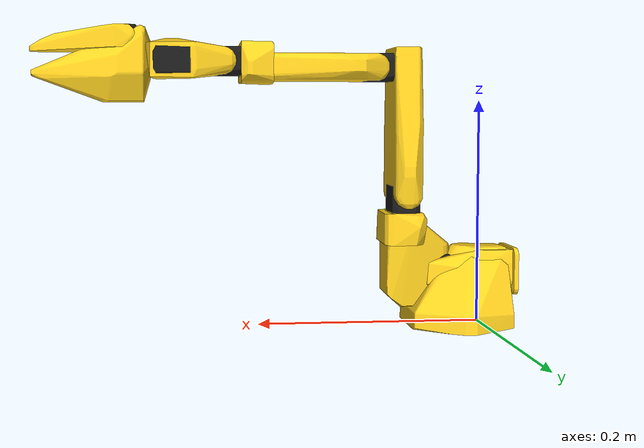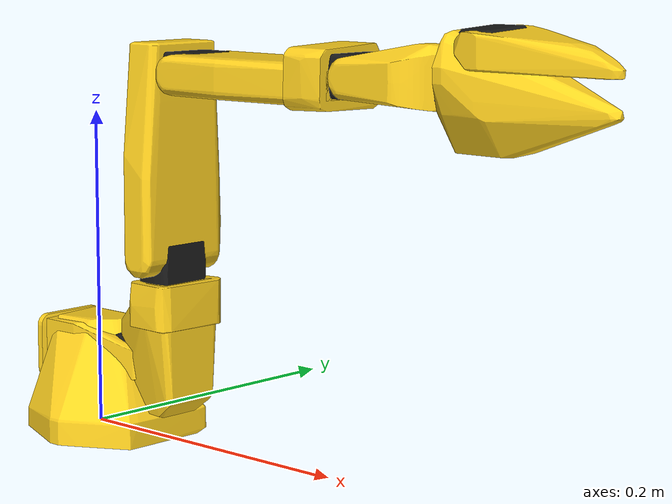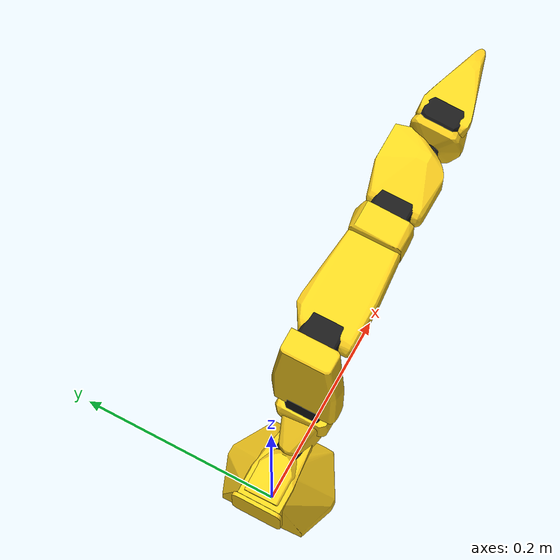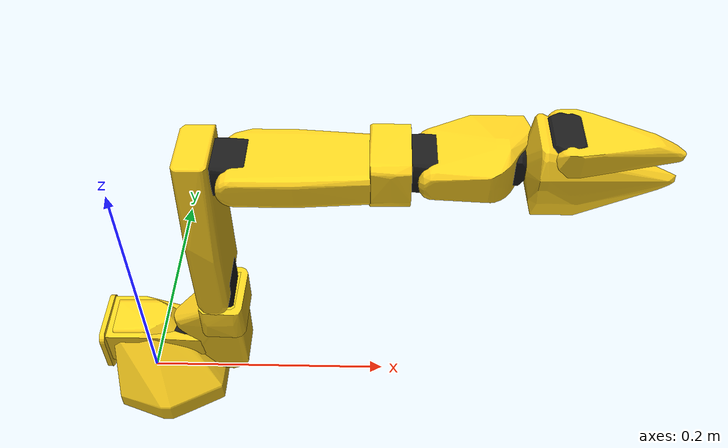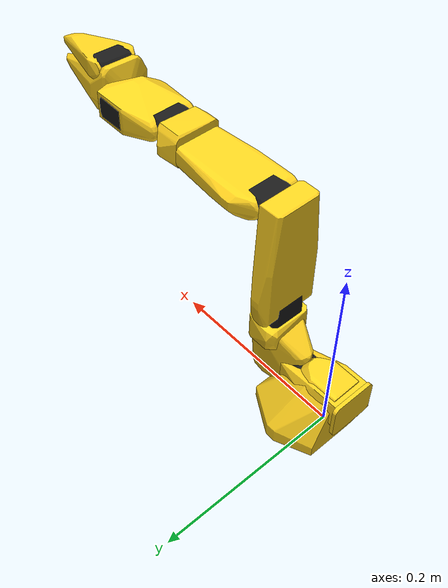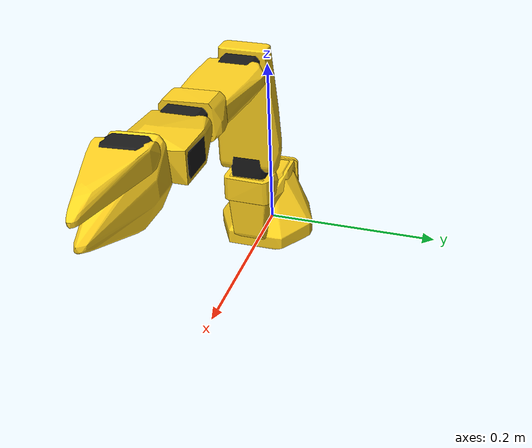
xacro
<?xml version="1.0"?>
<robot name="so101" xmlns:xacro="http://www.ros.org/wiki/xacro">
  <xacro:arg name="sim" default="true"/>

  <link name="world"/>
  <joint name="world_to_base" type="fixed">
    <parent link="world"/>
    <child link="base_link"/>
    <origin xyz="0 0 0" rpy="0 0 0"/>
  </joint>

  <xacro:include filename="$(find so101_cell)/urdf/so101_arm.xacro"/>

  <xacro:if value="$(arg sim)">
    <ros2_control name="so101_gz" type="system">
      <hardware>
        <plugin>gz_ros2_control/GazeboSimSystem</plugin>
      </hardware>
      <xacro:macro name="sim_joint" params="name initial">
        <joint name="${name}">
          <command_interface name="position"/>
          <state_interface name="position"><param name="initial_value">${initial}</param></state_interface>
          <state_interface name="velocity"/>
        </joint>
      </xacro:macro>
      <!-- Starts in the home pose (keep in sync with motion.home_joints in llm_commander/config/scene.yaml). -->
      <xacro:sim_joint name="shoulder_pan" initial="0.0"/>
      <xacro:sim_joint name="shoulder_lift" initial="-1.4"/>
      <xacro:sim_joint name="elbow_flex" initial="1.4"/>
      <xacro:sim_joint name="wrist_flex" initial="0.9"/>
      <xacro:sim_joint name="wrist_roll" initial="0.0"/>
      <xacro:sim_joint name="gripper" initial="0.0"/>
    </ros2_control>

    <gazebo>
      <plugin filename="gz_ros2_control-system" name="gz_ros2_control::GazeboSimROS2ControlPlugin">
        <parameters>$(find so101_cell)/config/controllers.yaml</parameters>
      </plugin>
    </gazebo>

    <!-- Grippy jaws so a cube doesn't slide out while it's carried. -->
    <xacro:macro name="grippy" params="link">
      <gazebo reference="${link}">
        <mu1>2.0</mu1>
        <mu2>2.0</mu2>
      </gazebo>
    </xacro:macro>
    <xacro:grippy link="gripper_link"/>
    <xacro:grippy link="moving_jaw_so101_v1_link"/>
  </xacro:if>
</robot>

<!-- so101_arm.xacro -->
<!-- SO-101 follower arm, from TheRobotStudio/SO-ARM100 Simulation/SO101/so101_new_calib.urdf (Apache-2.0).
     Changes: mesh paths point at this package, transmissions removed (see so101.urdf.xacro). -->
<robot xmlns:xacro="http://www.ros.org/wiki/xacro">

  <!-- Materials -->
  <material name="3d_printed">
    <color rgba="1.0 0.82 0.12 1.0"/>
  </material>
  <material name="sts3215">
    <color rgba="0.1 0.1 0.1 1.0"/>
  </material>

  <!-- Link base -->
  <link name="base_link">
    <inertial>
      <origin xyz="0.0137179 -5.19711e-05 0.0334843" rpy="0 0 0"/>
      <mass value="0.147"/>
      <inertia ixx="0.000114686" ixy="-4.59787e-07" ixz="4.97151e-06" iyy="0.000136117" iyz="9.75275e-08" izz="0.000130364"/>
    </inertial>
    <!-- Part base_motor_holder_so101_v1 -->
    <visual>
      <origin xyz="-0.00636471 -9.94414e-05 -0.0024" rpy="1.5708 -1.67685e-15 1.5708"/>
      <geometry>
        <mesh filename="file://$(find so101_cell)/meshes/base_motor_holder_so101_v1.stl"/>
      </geometry>
      <material name="3d_printed"/>
    </visual>
    <collision>
      <origin xyz="-0.00636471 -9.94414e-05 -0.0024" rpy="1.5708 -1.67685e-15 1.5708"/>
      <geometry>
        <mesh filename="file://$(find so101_cell)/meshes/base_motor_holder_so101_v1.stl"/>
      </geometry>
    </collision>
    <!-- Part base_so101_v2 -->
    <visual>
      <origin xyz="-0.00636471 -8.97657e-09 -0.0024" rpy="1.5708 -2.78073e-29 1.5708"/>
      <geometry>
        <mesh filename="file://$(find so101_cell)/meshes/base_so101_v2.stl"/>
      </geometry>
      <material name="3d_printed"/>
    </visual>
    <collision>
      <origin xyz="-0.00636471 -8.97657e-09 -0.0024" rpy="1.5708 -2.78073e-29 1.5708"/>
      <geometry>
        <mesh filename="file://$(find so101_cell)/meshes/base_so101_v2.stl"/>
      </geometry>
    </collision>
    <!-- Part sts3215_03a_v1 -->
    <visual>
      <origin xyz="0.0263353 -8.97657e-09 0.0437" rpy="-8.21148e-16 7.84513e-18 1.249e-15"/>
      <geometry>
        <mesh filename="file://$(find so101_cell)/meshes/sts3215_03a_v1.stl"/>
      </geometry>
      <material name="sts3215"/>
    </visual>
    <collision>
      <origin xyz="0.0263353 -8.97657e-09 0.0437" rpy="-8.21148e-16 7.84513e-18 1.249e-15"/>
      <geometry>
        <mesh filename="file://$(find so101_cell)/meshes/sts3215_03a_v1.stl"/>
      </geometry>
    </collision>
    <!-- Part waveshare_mounting_plate_so101_v2 -->
    <visual>
      <origin xyz="-0.0309827 -0.000199441 0.0474" rpy="1.5708 -1.35493e-14 1.5708"/>
      <geometry>
        <mesh filename="file://$(find so101_cell)/meshes/waveshare_mounting_plate_so101_v2.stl"/>
      </geometry>
      <material name="3d_printed"/>
    </visual>
    <collision>
      <origin xyz="-0.0309827 -0.000199441 0.0474" rpy="1.5708 -1.35493e-14 1.5708"/>
      <geometry>
        <mesh filename="file://$(find so101_cell)/meshes/waveshare_mounting_plate_so101_v2.stl"/>
      </geometry>
    </collision>
  </link>

  <!-- Link shoulder -->
  <link name="shoulder_link">
    <inertial>
      <origin xyz="-0.0307604 -1.66727e-05 -0.0252713" rpy="0 0 0"/>
      <mass value="0.100006"/>
      <inertia ixx="8.3759e-05" ixy="7.55525e-08" ixz="-1.16342e-06" iyy="8.10403e-05" iyz="1.54663e-07" izz="2.39783e-05"/>
    </inertial>
    <!-- Part sts3215_03a_v1_2 -->
    <visual>
      <origin xyz="-0.0303992 0.000422241 -0.0417" rpy="1.5708 1.5708 0"/>
      <geometry>
        <mesh filename="file://$(find so101_cell)/meshes/sts3215_03a_v1.stl"/>
      </geometry>
      <material name="sts3215"/>
    </visual>
    <collision>
      <origin xyz="-0.0303992 0.000422241 -0.0417" rpy="1.5708 1.5708 0"/>
      <geometry>
        <mesh filename="file://$(find so101_cell)/meshes/sts3215_03a_v1.stl"/>
      </geometry>
    </collision>
    <!-- Part motor_holder_so101_base_v1 -->
    <visual>
      <origin xyz="-0.0675992 -0.000177759 0.0158499" rpy="1.5708 -1.5708 0"/>
      <geometry>
        <mesh filename="file://$(find so101_cell)/meshes/motor_holder_so101_base_v1.stl"/>
      </geometry>
      <material name="3d_printed"/>
    </visual>
    <collision>
      <origin xyz="-0.0675992 -0.000177759 0.0158499" rpy="1.5708 -1.5708 0"/>
      <geometry>
        <mesh filename="file://$(find so101_cell)/meshes/motor_holder_so101_base_v1.stl"/>
      </geometry>
    </collision>
    <!-- Part rotation_pitch_so101_v1 -->
    <visual>
      <origin xyz="0.0122008 2.22413e-05 0.0464" rpy="-1.5708 2.35221e-33 0"/>
      <geometry>
        <mesh filename="file://$(find so101_cell)/meshes/rotation_pitch_so101_v1.stl"/>
      </geometry>
      <material name="3d_printed"/>
    </visual>
    <collision>
      <origin xyz="0.0122008 2.22413e-05 0.0464" rpy="-1.5708 2.35221e-33 0"/>
      <geometry>
        <mesh filename="file://$(find so101_cell)/meshes/rotation_pitch_so101_v1.stl"/>
      </geometry>
    </collision>
  </link>

  <!-- Link upper_arm -->
  <link name="upper_arm_link">
    <inertial>
      <origin xyz="-0.0898471 -0.00838224 0.0184089" rpy="0 0 0"/>
      <mass value="0.103"/>
      <inertia ixx="4.08002e-05" ixy="-1.97819e-05" ixz="-4.03016e-08" iyy="0.000147318" iyz="8.97326e-09" izz="0.000142487"/>
    </inertial>
    <!-- Part sts3215_03a_v1_3 -->
    <visual>
      <origin xyz="-0.11257 -0.0155 0.0187" rpy="-3.14159 -5.27356e-16 -1.5708"/>
      <geometry>
        <mesh filename="file://$(find so101_cell)/meshes/sts3215_03a_v1.stl"/>
      </geometry>
      <material name="sts3215"/>
    </visual>
    <collision>
      <origin xyz="-0.11257 -0.0155 0.0187" rpy="-3.14159 -5.27356e-16 -1.5708"/>
      <geometry>
        <mesh filename="file://$(find so101_cell)/meshes/sts3215_03a_v1.stl"/>
      </geometry>
    </collision>
    <!-- Part upper_arm_so101_v1 -->
    <visual>
      <origin xyz="-0.065085 0.012 0.0182" rpy="3.14159 -0 -1.30911e-30"/>
      <geometry>
        <mesh filename="file://$(find so101_cell)/meshes/upper_arm_so101_v1.stl"/>
      </geometry>
      <material name="3d_printed"/>
    </visual>
    <collision>
      <origin xyz="-0.065085 0.012 0.0182" rpy="3.14159 -0 -1.30911e-30"/>
      <geometry>
        <mesh filename="file://$(find so101_cell)/meshes/upper_arm_so101_v1.stl"/>
      </geometry>
    </collision>
  </link>

  <!-- Link lower_arm -->
  <link name="lower_arm_link">
    <inertial>
      <origin xyz="-0.0980701 0.00324376 0.0182831" rpy="0 0 0"/>
      <mass value="0.104"/>
      <inertia ixx="2.87438e-05" ixy="7.41152e-06" ixz="1.26409e-06" iyy="0.000159844" iyz="-4.90188e-08" izz="0.00014529"/>
    </inertial>
    <!-- Part under_arm_so101_v1 -->
    <visual>
      <origin xyz="-0.0648499 -0.032 0.0182" rpy="3.14159 -0 6.67202e-31"/>
      <geometry>
        <mesh filename="file://$(find so101_cell)/meshes/under_arm_so101_v1.stl"/>
      </geometry>
      <material name="3d_printed"/>
    </visual>
    <collision>
      <origin xyz="-0.0648499 -0.032 0.0182" rpy="3.14159 -0 6.67202e-31"/>
      <geometry>
        <mesh filename="file://$(find so101_cell)/meshes/under_arm_so101_v1.stl"/>
      </geometry>
    </collision>
    <!-- Part motor_holder_so101_wrist_v1 -->
    <visual>
      <origin xyz="-0.0648499 -0.032 0.018" rpy="-3.14159 -2.55351e-15 -1.83387e-30"/>
      <geometry>
        <mesh filename="file://$(find so101_cell)/meshes/motor_holder_so101_wrist_v1.stl"/>
      </geometry>
      <material name="3d_printed"/>
    </visual>
    <collision>
      <origin xyz="-0.0648499 -0.032 0.018" rpy="-3.14159 -2.55351e-15 -1.83387e-30"/>
      <geometry>
        <mesh filename="file://$(find so101_cell)/meshes/motor_holder_so101_wrist_v1.stl"/>
      </geometry>
    </collision>
    <!-- Part sts3215_03a_v1_4 -->
    <visual>
      <origin xyz="-0.1224 0.0052 0.0187" rpy="-3.14159 -7.88861e-31 -3.14159"/>
      <geometry>
        <mesh filename="file://$(find so101_cell)/meshes/sts3215_03a_v1.stl"/>
      </geometry>
      <material name="sts3215"/>
    </visual>
    <collision>
      <origin xyz="-0.1224 0.0052 0.0187" rpy="-3.14159 -7.88861e-31 -3.14159"/>
      <geometry>
        <mesh filename="file://$(find so101_cell)/meshes/sts3215_03a_v1.stl"/>
      </geometry>
    </collision>
  </link>

  <!-- Link wrist -->
  <link name="wrist_link">
    <inertial>
      <origin xyz="-0.000103312 -0.0386143 0.0281156" rpy="0 0 0"/>
      <mass value="0.079"/>
      <inertia ixx="3.68263e-05" ixy="1.7893e-08" ixz="-5.28128e-08" iyy="2.5391e-05" iyz="3.6412e-06" izz="2.1e-05"/>
    </inertial>
    <!-- Part sts3215_03a_no_horn_v1 -->
    <visual>
      <origin xyz="8.32667e-17 -0.0424 0.0306" rpy="1.5708 1.5708 0"/>
      <geometry>
        <mesh filename="file://$(find so101_cell)/meshes/sts3215_03a_no_horn_v1.stl"/>
      </geometry>
      <material name="sts3215"/>
    </visual>
    <collision>
      <origin xyz="8.32667e-17 -0.0424 0.0306" rpy="1.5708 1.5708 0"/>
      <geometry>
        <mesh filename="file://$(find so101_cell)/meshes/sts3215_03a_no_horn_v1.stl"/>
      </geometry>
    </collision>
    <!-- Part wrist_roll_pitch_so101_v2 -->
    <visual>
      <origin xyz="0 -0.028 0.0181" rpy="-1.5708 -1.5708 0"/>
      <geometry>
        <mesh filename="file://$(find so101_cell)/meshes/wrist_roll_pitch_so101_v2.stl"/>
      </geometry>
      <material name="3d_printed"/>
    </visual>
    <collision>
      <origin xyz="0 -0.028 0.0181" rpy="-1.5708 -1.5708 0"/>
      <geometry>
        <mesh filename="file://$(find so101_cell)/meshes/wrist_roll_pitch_so101_v2.stl"/>
      </geometry>
    </collision>
  </link>

  <!-- Link gripper -->
  <link name="gripper_link">
    <inertial>
      <origin xyz="0.000213627 0.000245138 -0.025187" rpy="0 0 0"/>
      <mass value="0.087"/>
      <inertia ixx="2.75087e-05" ixy="-3.35241e-07" ixz="-5.7352e-06" iyy="4.33657e-05" iyz="-5.17847e-08" izz="3.45059e-05"/>
    </inertial>
    <!-- Part sts3215_03a_v1_5 -->
    <visual>
      <origin xyz="0.0077 0.0001 -0.0234" rpy="-1.5708 -5.19179e-17 -1.66533e-16"/>
      <geometry>
        <mesh filename="file://$(find so101_cell)/meshes/sts3215_03a_v1.stl"/>
      </geometry>
      <material name="sts3215"/>
    </visual>
    <collision>
      <origin xyz="0.0077 0.0001 -0.0234" rpy="-1.5708 -5.19179e-17 -1.66533e-16"/>
      <geometry>
        <mesh filename="file://$(find so101_cell)/meshes/sts3215_03a_v1.stl"/>
      </geometry>
    </collision>
    <!-- Part wrist_roll_follower_so101_v1 -->
    <visual>
      <origin xyz="8.32667e-17 -0.000218214 0.000949706" rpy="-3.14159 -5.55112e-17 0"/>
      <geometry>
        <mesh filename="file://$(find so101_cell)/meshes/wrist_roll_follower_so101_v1.stl"/>
      </geometry>
      <material name="3d_printed"/>
    </visual>
    <collision>
      <origin xyz="8.32667e-17 -0.000218214 0.000949706" rpy="-3.14159 -5.55112e-17 0"/>
      <geometry>
        <mesh filename="file://$(find so101_cell)/meshes/wrist_roll_follower_so101_v1.stl"/>
      </geometry>
    </collision>
  </link>

  <!-- Gripper frame (dummy link + fixed joint) -->
  <link name="gripper_frame_link">
    <origin xyz="0 0 0" rpy="0 -0 0"/>
    <inertial>
      <origin xyz="0 0 0" rpy="0 0 0"/>
      <mass value="1e-9"/>
      <inertia ixx="0" ixy="0" ixz="0" iyy="0" iyz="0" izz="0"/>
    </inertial>
  </link>

  <joint name="gripper_frame_joint" type="fixed">
    <origin xyz="-0.0079 -0.000218121 -0.0981274" rpy="0 3.14159 0"/>
    <parent link="gripper_link"/>
    <child link="gripper_frame_link"/>
    <axis xyz="0 0 0"/>
  </joint>

  <!-- Link moving_jaw_so101_v1 -->
  <link name="moving_jaw_so101_v1_link">
    <inertial>
      <origin xyz="-0.00157495 -0.0300244 0.0192755" rpy="0 0 0"/>
      <mass value="0.012"/>
      <inertia ixx="6.61427e-06" ixy="-3.19807e-07" ixz="-5.90717e-09" iyy="1.89032e-06" iyz="-1.09945e-07" izz="5.28738e-06"/>
    </inertial>
    <!-- Part moving_jaw_so101_v1 -->
    <visual>
      <origin xyz="-5.55112e-17 -5.55112e-17 0.0189" rpy="9.53145e-17 6.93889e-18 1.24077e-24"/>
      <geometry>
        <mesh filename="file://$(find so101_cell)/meshes/moving_jaw_so101_v1.stl"/>
      </geometry>
      <material name="3d_printed"/>
    </visual>
    <collision>
      <origin xyz="-5.55112e-17 -5.55112e-17 0.0189" rpy="9.53145e-17 6.93889e-18 1.24077e-24"/>
      <geometry>
        <mesh filename="file://$(find so101_cell)/meshes/moving_jaw_so101_v1.stl"/>
      </geometry>
    </collision>
  </link>

  <!-- Joint from gripper to moving_jaw_so101_v1 -->
  <joint name="gripper" type="revolute">
    <origin xyz="0.0202 0.0188 -0.0234" rpy="1.5708 -5.24284e-08 -1.41553e-15"/>
    <parent link="gripper_link"/>
    <child link="moving_jaw_so101_v1_link"/>
    <axis xyz="0 0 1"/>
    <limit effort="10" velocity="10" lower="-0.174533" upper="1.74533"/>
  </joint>

  <!-- Joint from wrist to gripper -->
  <joint name="wrist_roll" type="revolute">
    <origin xyz="5.55112e-17 -0.0611 0.0181" rpy="1.5708 0.0486795 3.14159"/>
    <parent link="wrist_link"/>
    <child link="gripper_link"/>
    <axis xyz="0 0 1"/>
    <limit effort="10" velocity="10" lower="-2.74385" upper="2.84121"/>
  </joint>

  <!-- Joint from lower_arm to wrist -->
  <joint name="wrist_flex" type="revolute">
    <origin xyz="-0.1349 0.0052 3.62355e-17" rpy="4.02456e-15 8.67362e-16 -1.5708"/>
    <parent link="lower_arm_link"/>
    <child link="wrist_link"/>
    <axis xyz="0 0 1"/>
    <limit effort="10" velocity="10" lower="-1.65806" upper="1.65806"/>
  </joint>

  <!-- Joint from upper_arm to lower_arm -->
  <!-- Note: 5-degree calibration offset applied to joint limits -->
  <joint name="elbow_flex" type="revolute">
    <origin xyz="-0.11257 -0.028 1.73763e-16" rpy="-3.63608e-16 8.74301e-16 1.5708"/>
    <parent link="upper_arm_link"/>
    <child link="lower_arm_link"/>
    <axis xyz="0 0 1"/>
    <limit effort="10" velocity="10" lower="-1.69" upper="1.69"/>
  </joint>

  <!-- Joint from shoulder to upper_arm -->
  <joint name="shoulder_lift" type="revolute">
    <origin xyz="-0.0303992 -0.0182778 -0.0542" rpy="-1.5708 -1.5708 0"/>
    <parent link="shoulder_link"/>
    <child link="upper_arm_link"/>
    <axis xyz="0 0 1"/>
    <limit effort="10" velocity="10" lower="-1.74533" upper="1.74533"/>
  </joint>

  <!-- Joint from base to shoulder -->
  <joint name="shoulder_pan" type="revolute">
    <origin xyz="0.0388353 -8.97657e-09 0.0624" rpy="3.14159 4.18253e-17 -3.14159"/>
    <parent link="base_link"/>
    <child link="shoulder_link"/>
    <axis xyz="0 0 1"/>
    <limit effort="10" velocity="10" lower="-1.91986" upper="1.91986"/>
  </joint>

</robot>
